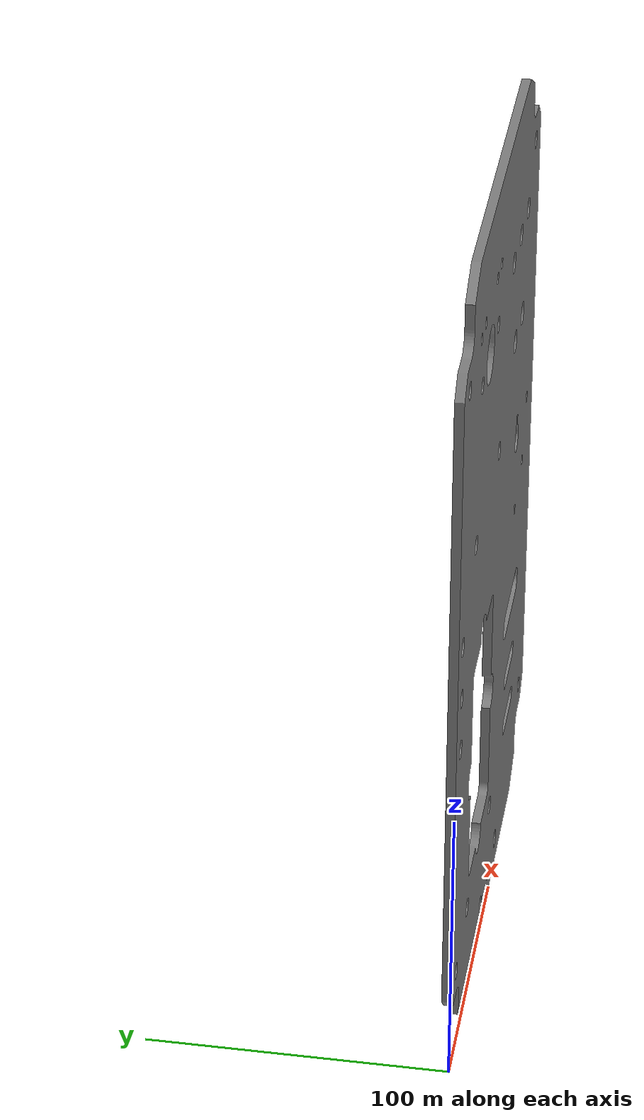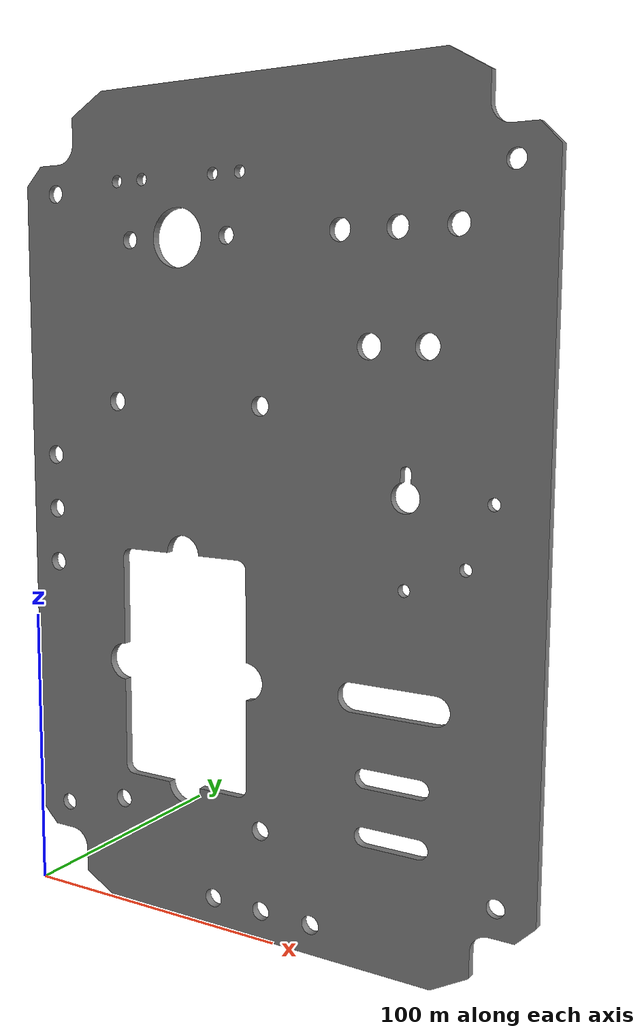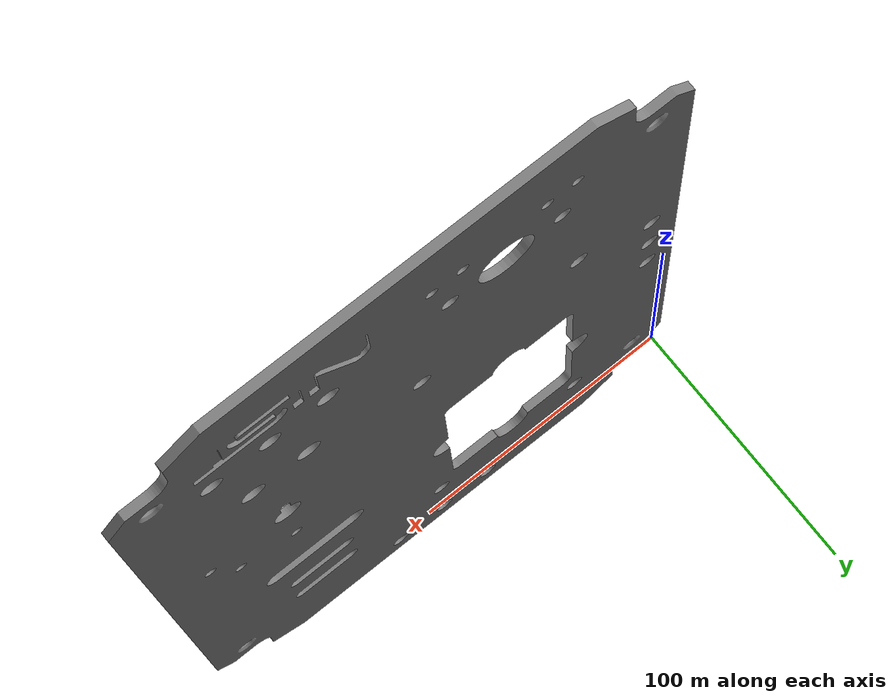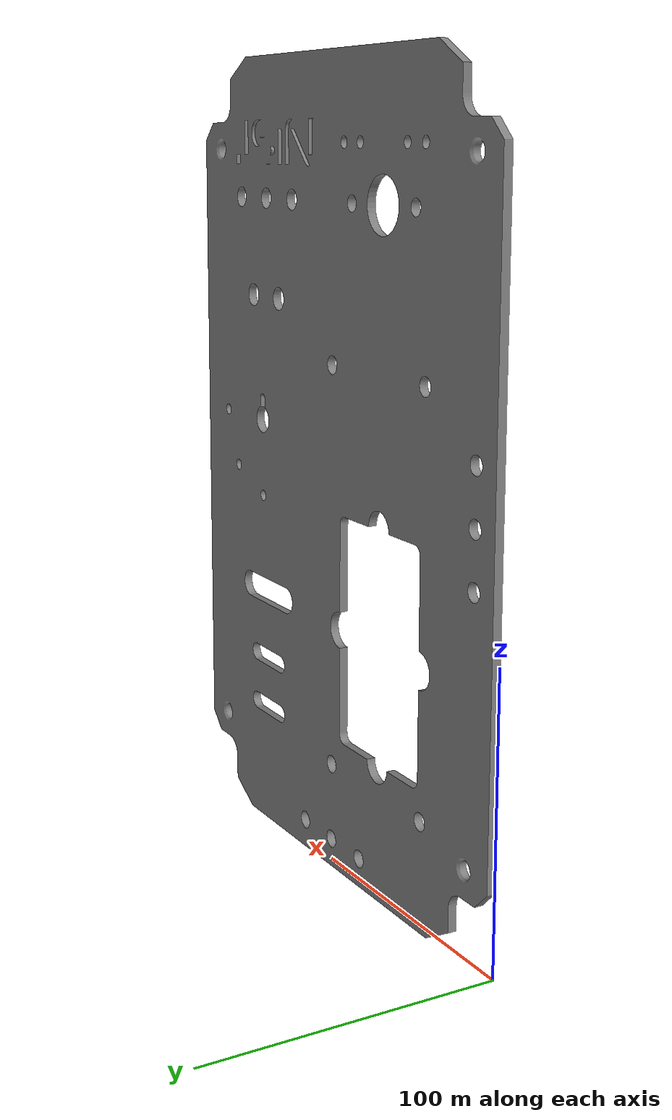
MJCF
<mujoco model="nist_ftc_09_layer">
  <default>
    <default class="visual">
      <geom group="2" type="mesh" contype="0" conaffinity="0"/>
    </default>
    <default class="collision">
      <geom group="3" type="mesh"/>
    </default>
  </default>
  <asset>
    <mesh file="nist_ftc_09_layer.obj"/>
    <mesh file="nist_ftc_09_layer_collision_0.obj"/>
    <mesh file="nist_ftc_09_layer_collision_1.obj"/>
    <mesh file="nist_ftc_09_layer_collision_2.obj"/>
    <mesh file="nist_ftc_09_layer_collision_3.obj"/>
    <mesh file="nist_ftc_09_layer_collision_4.obj"/>
    <mesh file="nist_ftc_09_layer_collision_5.obj"/>
    <mesh file="nist_ftc_09_layer_collision_6.obj"/>
  </asset>
  <worldbody>
    <body name="nist_ftc_09_layer">
      <freejoint/>
      <geom mesh="nist_ftc_09_layer" class="visual"/>
      <geom mesh="nist_ftc_09_layer_collision_0" rgba="0.6586739638407471 0.36829465568926456 0.543275070432406 1" class="collision"/>
      <geom mesh="nist_ftc_09_layer_collision_1" rgba="0.3382091610736424 0.9936203712934605 0.21638107876383905 1" class="collision"/>
      <geom mesh="nist_ftc_09_layer_collision_2" rgba="0.7570874511552209 0.4652216332559177 0.7205833601902147 1" class="collision"/>
      <geom mesh="nist_ftc_09_layer_collision_3" rgba="0.864163868832855 0.31852592716348804 0.3595083168244023 1" class="collision"/>
      <geom mesh="nist_ftc_09_layer_collision_4" rgba="0.22293932585188025 0.8521862394618981 0.1738136957409402 1" class="collision"/>
      <geom mesh="nist_ftc_09_layer_collision_5" rgba="0.33143390096171177 0.6787104147153326 0.26251367354041655 1" class="collision"/>
      <geom mesh="nist_ftc_09_layer_collision_6" rgba="0.5594272717915934 0.7606135881059986 0.26960343126636843 1" class="collision"/>
    </body>
  </worldbody>
</mujoco>
